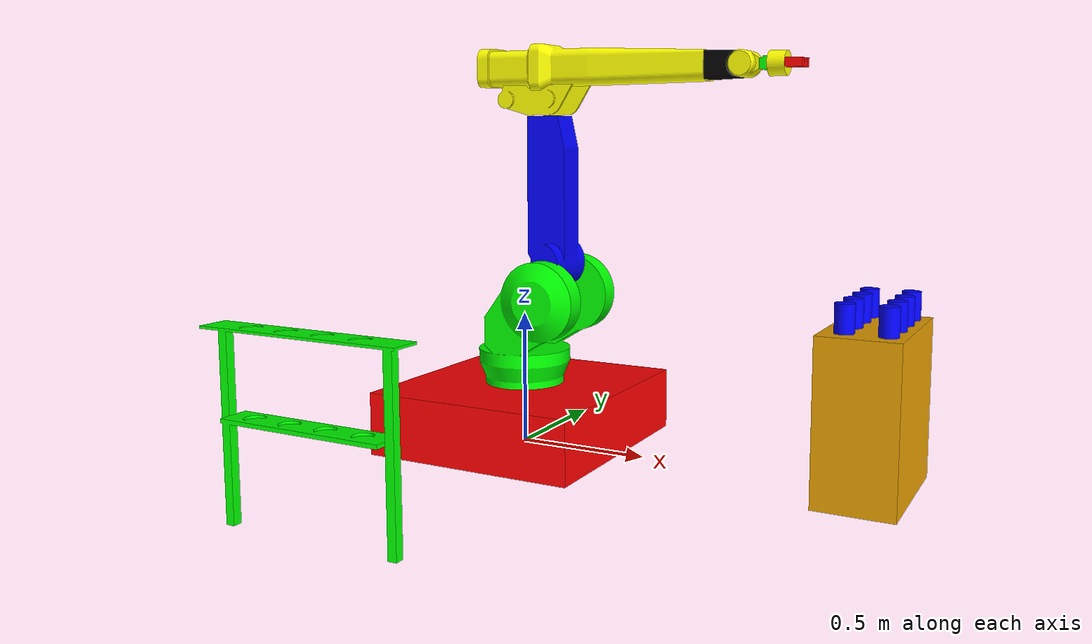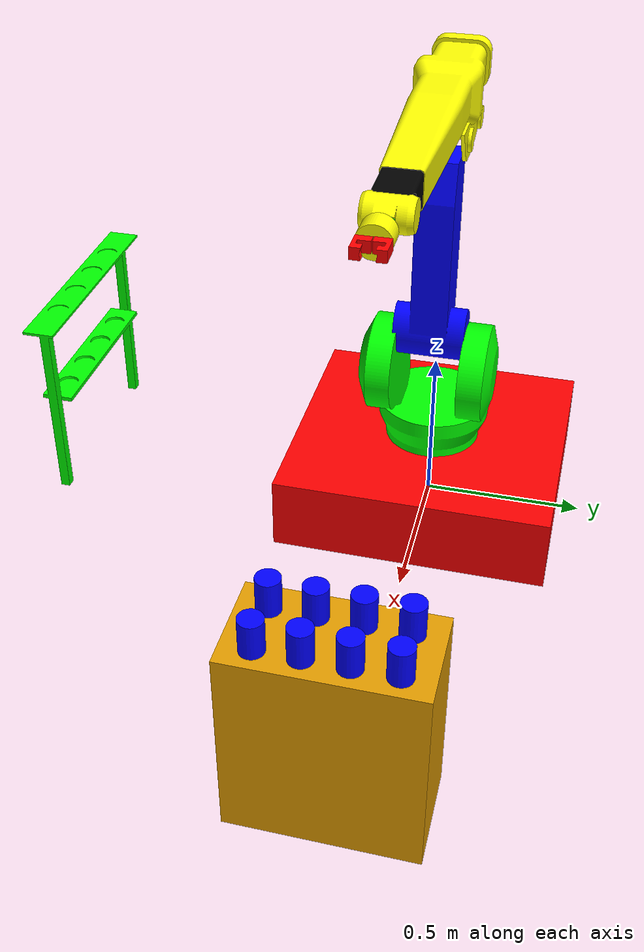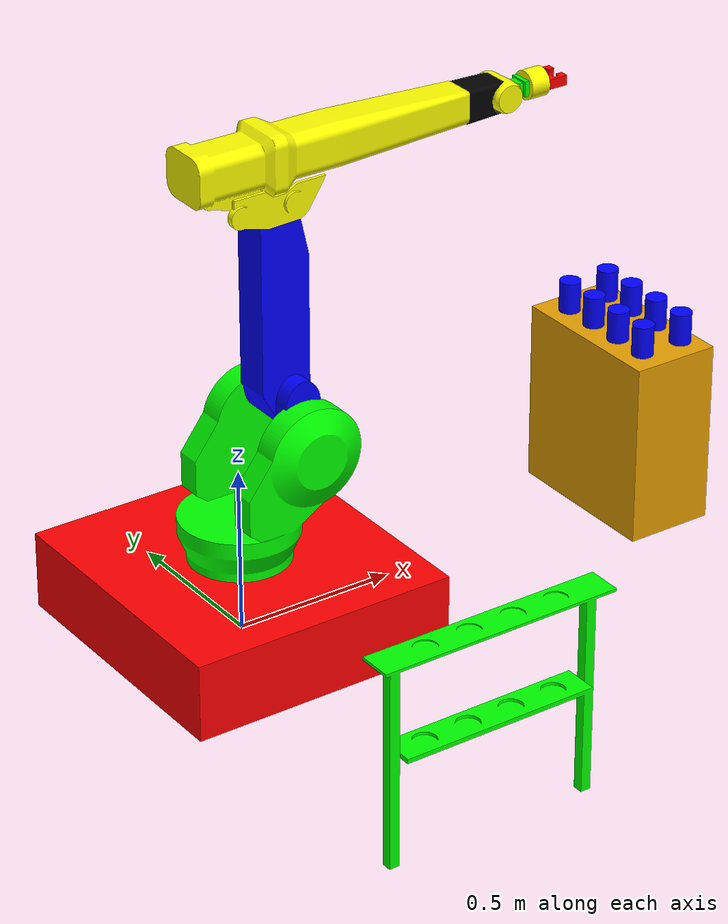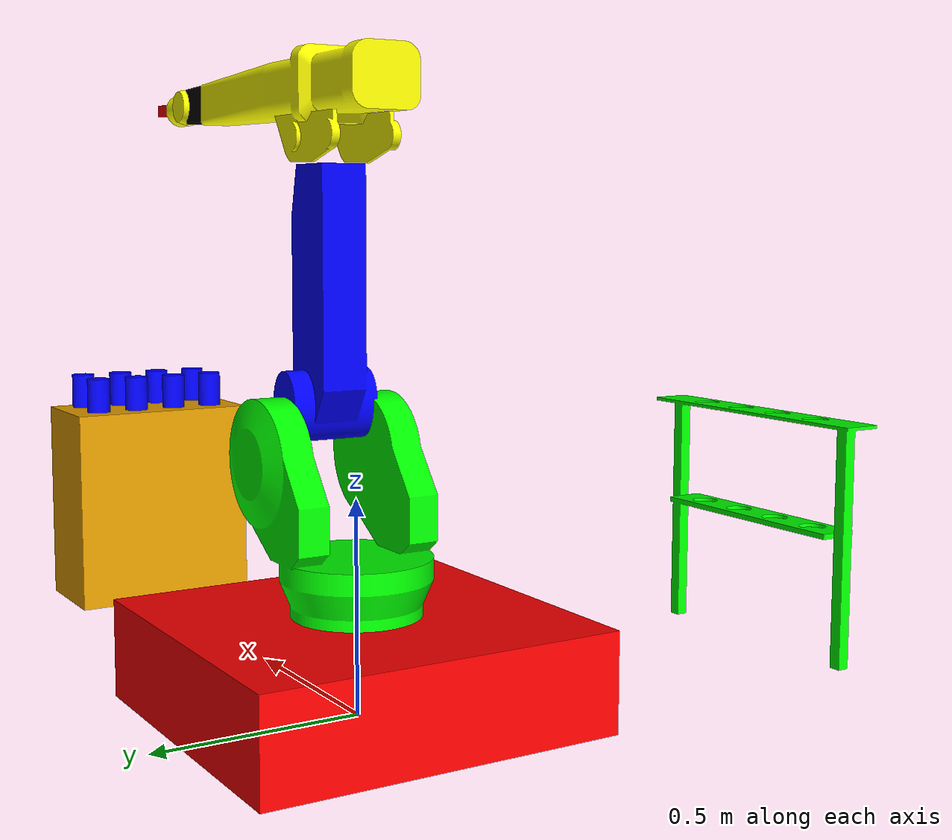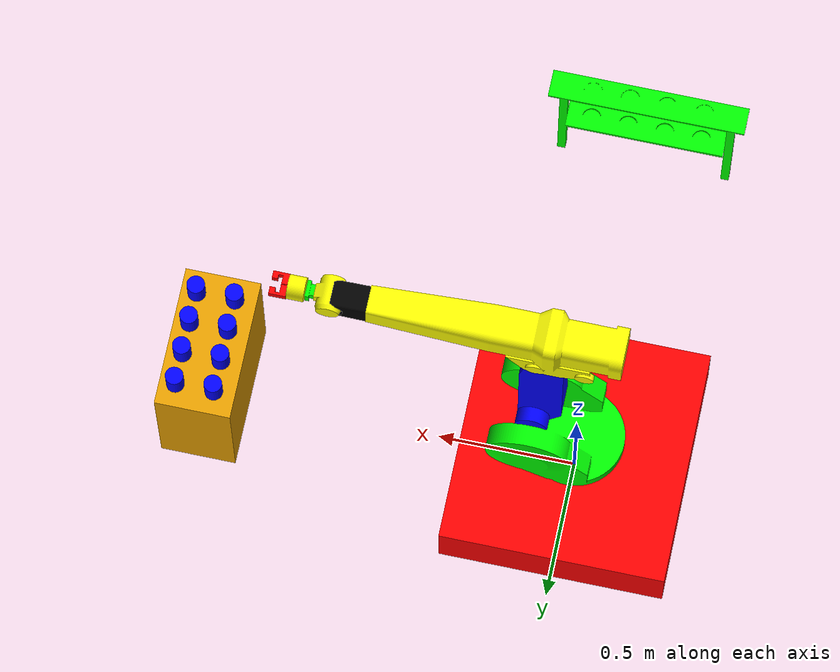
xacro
<?xml version="1.0"?>
<robot name="irb_1410_robot_ef" xmlns:xacro="http://www.ros.org/wiki/xacro">

    <material name="red"><color rgba="1 0 0 1"/></material>
    <material name="green"><color rgba="0 1 0 1"/></material>
    <material name="blue"><color rgba="0 0 1 1"/></material>
    <material name="black"><color rgba="0 0 0 1"/></material>
    <material name="yellow"><color rgba="1 1 0 1"/></material>

    <xacro:include filename="pick_drop_setup.xacro" />

    <!--  ###############  BASE LINK  ###############   -->
    <link name="base_link" />

    <!--    ROBOT BASE LINK   -->
    <link name="robot_base" >
        <visual>
            <geometry>
                <box size="0.82 0.86 0.235"/>
            </geometry>
            <origin xyz="0 0 -0.1175" rpy="0 0 0" />
            <material name="red"/>
        </visual>

        <collision>
             <visual>
            <geometry>
                <box size="0.82 0.86 0.235"/>
            </geometry>
            <origin xyz="0 0 -0.1175" rpy="0 0 0" />
            <material name="red"/>
        </visual>
        </collision>

    </link>

    <!--   ############### ROBOT BASE ROATE LINK  ###############   -->
    <link name="base" >
        <visual>
            <geometry>
                <mesh filename="package://irb_1410_new/meshes/Base.stl"
                      scale="0.001 0.001 0.001"/>
            </geometry>
            <origin xyz="0.15 0 1" rpy="0 0 1.57" />
            <material name="green"/>
        </visual>

        <collision>
            <geometry>
                <mesh filename="package://irb_1410_new/meshes/Base.stl"
                      scale="0.001 0.001 0.01"/>
            </geometry>
            <origin xyz="0.15 0 1" rpy="0 0 1.57" />
        </collision>
    </link>

     <!--   ############### ROBOT ARM LINK ###############  -->
    <link name="arm_1" >
        <visual>
            <geometry>
                <mesh filename="package://irb_1410_new/meshes/Arm_1.stl"
                      scale="0.00085 0.0007 0.001"/>
            </geometry>
            <origin xyz="0 0 0.65" rpy="0 0 1.57" />
            <material name="blue"/>
        </visual>

        <collision>
            <geometry>
                <mesh filename="package://irb_1410_new/meshes/Arm_1.stl"
                      scale="0.00085 0.0007 0.001"/>
            </geometry>
            <origin xyz="0 0 0.65" rpy="0 0 1.57" />
        </collision>
    </link>

    <!--   ############### ROBOT ARM 2 LINK ###############  -->
    <link name="arm_2" >
        <visual>
            <geometry>
                <mesh filename="package://irb_1410_new/meshes/Arm_2.stl"
                      scale="0.001 0.001 0.001"/>
            </geometry>
            <origin xyz="0 0 0.11" rpy="0 0 1.57" />
            <material name="yellow"/>
        </visual>

        <collision>
            <geometry>
                <mesh filename="package://irb_1410_new/meshes/Arm_2.stl"
                      scale="0.001 0.001 0.001"/>
            </geometry>
            <origin xyz="0 0 0.11" rpy="0 0 1.57" />
        </collision>
    </link>

    <!--   ############### ROBOT WRIST LINK ###############  -->
    <link name="wrist" >
        <visual>
            <geometry>
                <mesh filename="package://irb_1410_new/meshes/Wrist.stl"
                      scale="0.001 0.001 0.001"/>
            </geometry>
            <origin xyz="0 0.004 -0.01" rpy="0 0 1.57" />
            <material name="black"/>
        </visual>

        <collision>
            <geometry>
                <mesh filename="package://irb_1410_new/meshes/Wrist.stl"
                      scale="0.001 0.001 0.001"/>
            </geometry>
            <origin xyz="0 0.004 -0.01" rpy="0 0 1.57" />
        </collision>
    </link>

    <!--   ############### ROBOT END WRIST LINK  ############### -->
    <link name="end_wrist" >
        <visual>
            <geometry>
                <mesh filename="package://irb_1410_new/meshes/End_wrist.stl"
                      scale="0.001 0.001 0.001"/>
            </geometry>
            <origin xyz="-0.713 0 0" rpy="0 0 1.57" />
            <material name="yellow"/>
        </visual>

        <collision>
            <geometry>
                <mesh filename="package://irb_1410_new/meshes/End_wrist.stl"
                      scale="0.001 0.001 0.001"/>
            </geometry>
            <origin xyz="-0.713 0 0" rpy="0 0 1.57" />
        </collision>
    </link>

    <!--   ############### ROBOT END LINK ###############  -->
    <link name="end" >
        <visual>
            <geometry>
                <mesh filename="package://irb_1410_new/meshes/END.stl"
                      scale="0.001 0.001 0.001"/>
            </geometry>
            <origin xyz="-0.798 0 0" rpy="0 0 1.57" />
            <material name="green"/>
        </visual>

        <collision>
             <geometry>
                <mesh filename="package://irb_1410_new/meshes/END.stl"
                      scale="0.001 0.001 0.001"/>
            </geometry>
            <origin xyz="-0.798 0 0" rpy="0 0 1.57" />
        </collision>
    </link>

    <!--   ############### ROBOT END EFFECTOR CYLINDER LINK ###############  -->
    <link name="end_cylinder" >
        <visual>
            <geometry>
                <mesh filename="package://irb_1410_new/meshes/ef_cylinder.stl"
                      scale="0.001 0.001 0.001"/>
            </geometry>
            <origin xyz="0.815 0 0" rpy="1.57 1.57 0" />
            <material name="yellow"/>
        </visual>

        <collision>
            <geometry>
                <mesh filename="package://irb_1410_new/meshes/ef_cylinder.stl"
                      scale="0.001 0.001 0.001"/>
            </geometry>
            <origin xyz="0.815 0 0" rpy="1.57 1.57 0" />
        </collision>
    </link>

    <!--   ############### ROBOT END EFFECTOR FINGER_R LINK ###############  -->
    <link name="end_finger_r" >
        <visual>
            <geometry>
                <mesh filename="package://irb_1410_new/meshes/ef_finger.stl"
                      scale="0.001 0.001 0.001"/>
            </geometry>
            <origin xyz="-0.043 0 -0.885" rpy="-1.57 0 3.14" />
            <material name="red"/>
        </visual>

        <collision>
            <geometry>
                <mesh filename="package://irb_1410_new/meshes/ef_finger.stl"
                      scale="0.001 0.001 0.001"/>
            </geometry>
            <origin xyz="-0.043 0 -0.885" rpy="-1.57 0 3.14" />
        </collision>
    </link>

    <!--  ###############  GRIPPER BASE LINK  ###############   -->
    <link name="gripper_link" />

    <!--   ############### ROBOT END EFFECTOR FINGER_L LINK ###############  -->
    <link name="end_finger_l" >
        <visual>
            <geometry>
                <mesh filename="package://irb_1410_new/meshes/ef_finger.stl"
                      scale="0.001 0.001 0.001"/>
            </geometry>
            <origin xyz="0.043 0 -0.885" rpy="-1.57 0 0" />
            <material name="red"/>
        </visual>

        <collision>
            <geometry>
                <mesh filename="package://irb_1410_new/meshes/ef_finger.stl"
                      scale="0.001 0.001 0.001"/>
            </geometry>
            <origin xyz="0.043 0 -0.885" rpy="-1.57 0 0" />
        </collision>
    </link>

    <!--  ##############################  JOINTS  ##############################  -->
    <joint name="base_link_robot_base" type="fixed">
        <parent link="base_link"/>
        <child link="robot_base"/>
        <origin xyz="0 0 0.235" rpy="0 0 0"/>
    </joint>

    <joint name="joint1" type="revolute">
        <parent link="robot_base"/>
        <child link="base"/>
        <origin xyz="0 0 0.0" rpy="0 0 0"/>
        <axis xyz="0 0 1"/>
        <limit lower="-2.96706" upper="2.96706" effort="10" velocity="1"/>
    </joint>

    <joint name="joint2" type="revolute">
        <parent link="base"/>
        <child link="arm_1"/>
        <origin xyz="0.15 0.0 0.475" rpy="0 0 0"/>
        <axis xyz="0 1 0"/>
        <limit lower="-1.22173" upper="1.22173" effort="10" velocity="1"/>
    </joint>

    <joint name="joint3" type="revolute">
        <parent link="arm_1"/>
        <child link="arm_2"/>
        <origin xyz="0 0 0.600" rpy="0 0 0"/>
        <axis xyz="0 1 0"/>
        <limit lower="-1.13446" upper="1.22173" effort="10" velocity="1"/>
    </joint>

    <joint name="joint4" type="revolute">
        <parent link="arm_2"/>
        <child link="wrist"/>
        <origin xyz="0 0 0.12" rpy="0 0 0"/>
        <axis xyz="1 0 0"/>
        <limit lower="-2.53073" upper="2.53073" effort="5" velocity="0.5"/>
    </joint>

    <joint name="joint5" type="revolute">
        <parent link="wrist"/>
        <child link="end_wrist"/>
        <origin xyz="0.72 0 -0.01" rpy="0 0 0"/>
        <axis xyz="0 1 0"/>
        <limit lower="-2.00713" upper="2.00713" effort="5" velocity="0.5"/>
    </joint>

    <joint name="joint6" type="revolute">
        <parent link="end_wrist"/>
        <child link="end"/>
        <origin xyz="0.085 0.0 0.0" rpy="0 0 0"/>
        <axis xyz="1 0 0"/>
        <limit lower="-5.23599" upper="5.23599" effort="5" velocity="0.5"/>
    </joint>

    <!--  ###############  END EFFECTOR CYLINDER LINK ###############  -->

    <joint name="ef_cylinder" type="fixed">
        <parent link="end"/>
        <child link="end_cylinder"/>
        <origin xyz="0.07 0 0" rpy="0 0 0"/>
    </joint>

    <!--  ###############  END EFFECTOR GRIPPER LINK ###############  -->

    <joint name="tool" type="fixed">
        <parent link="end_cylinder"/>
        <child link="gripper_link"/>
        <origin xyz="0.0 0 0" rpy="1.57 0 1.57"/>
    </joint>

    <!--  ###############  END EFFECTOR RIGHT FINGER LINK ###############  -->

    <joint name="ef_finger_r" type="prismatic">
        <parent link="end_cylinder"/>
        <child link="end_finger_r"/>
        <origin xyz="0.00 0.02 0" rpy="1.57 0 1.57"/>
        <axis xyz="1 0 0"/>
        <!-- Limits: lower/upper (meters), effort (N), velocity (m/s) -->
        <limit effort="100.0" lower="0.0" upper="0.02" velocity="0.02"/>
    </joint>

    <!--  ###############  END EFFECTOR RIGHT FINGER LINK ###############  -->
    <joint name="ef_finger_l" type="prismatic">
        <parent link="end_cylinder"/>
        <child link="end_finger_l"/>
        <origin xyz="0.0 -0.02 0" rpy="1.57 0 1.57"/>
        <axis xyz="-1 0 0"/>
        <!-- Limits: lower/upper (meters), effort (N), velocity (m/s) -->
        <limit effort="100.0" lower="0.0" upper="0.02" velocity="0.02"/>
    </joint>

</robot>

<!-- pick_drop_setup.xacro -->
<robot xmlns:xacro="http://www.ros.org/wiki/xacro">

    <!--  ###############  ROBOT PICKUP STAND LINK ###############   -->
    <link name="pickup_stand">
        <visual>
            <geometry>
                <box size="0.51 0.274 0.5635" />
            </geometry>
            <origin xyz="0.137 0.25 -0.28175" rpy="0 0 1.57" />
        </visual>

        <collision>
           <geometry>
                <box size="0.51 0.274 0.5635" />
            </geometry>
            <origin xyz="0 0 0" rpy="0 0 1.57" />
        </collision>
    </link>

    <!--  ###############  ROBOT PICKUP STAND LINK ###############  -->
    <link name="drop_stand" >
        <visual>
            <geometry>
                <mesh filename="package://irb_1410/meshes/Part1.SLDPRT"
                      scale="0.001 0.001 0.001"/>
            </geometry>
            <origin xyz="0.9 -0.32 0.35" rpy="0 1.57 1.57" />
            <material name="green"/>
        </visual>

        <collision>
            <geometry>
                <mesh filename="package://irb_1410/meshes/stand_1.stl"
                      scale="0.001 0.001 0.001"/>
            </geometry>
            <origin xyz="0.9 -0.32 0.35" rpy="0 1.57 1.57" />
        </collision>
    </link>

    <!-- ###############   CYLINDRICAL BLOCK  MACROS  ############### -->
    <xacro:macro name="cylindrical_block" params="prefix">
        <link name="cylindrical_block_${prefix}" >
        <visual>
            <geometry>
                <cylinder radius="0.0325" length="0.0975"/>
            </geometry>
            <origin xyz="0 0 0" rpy="0 0 0" />
            <material name="blue"/>
        </visual>

        <collision>
            <geometry>
                <cylinder radius="0.0325" length="0.0975"/>
            </geometry>
            <origin xyz="0 0 0" rpy="0 0 0" />
        </collision>

    </link>
    </xacro:macro>

    <!-- ###############   CALLING FRONT CYLINDRICAL BLOCK  MACROS  ############### -->
    <xacro:cylindrical_block prefix="11" />
    <xacro:cylindrical_block prefix="12" />
    <xacro:cylindrical_block prefix="13" />
    <xacro:cylindrical_block prefix="14" />

    <xacro:cylindrical_block prefix="21" />
    <xacro:cylindrical_block prefix="22" />
    <xacro:cylindrical_block prefix="23" />
    <xacro:cylindrical_block prefix="24" />

    <!--  ###############  STAND JOINT ###############  -->
    <joint name="pickup_stand_joint" type="fixed">
        <parent link="base_link"/>
        <child link="pickup_stand"/>
        <origin xyz="1.2 -0.255 0.5635" rpy="0 0 0"/>
    </joint>

    <!--  ###############  DROP STAND JOINT ###############  -->
    <joint name="drop_stand_joint" type="fixed">
        <parent link="base_link"/>
        <child link="drop_stand"/>
        <origin xyz="0 -1.2 0" rpy="0 0 0"/>
    </joint>

    <!--  ###############  FRONT CYLINDRICAL BLOCK JOINT 11 ###############  -->
    <joint name="cylindrial_block_joint_11" type="fixed">
        <parent link="pickup_stand"/>
        <child link="cylindrical_block_11"/>
        <origin xyz="0.07624 0.07665 0.049" rpy="0 0 0"/>
    </joint>

    <!--  ###############  FRONT CYLINDRICAL BLOCK JOINT 12 ###############  -->
    <joint name="cylindrial_block_joint_12" type="fixed">
        <parent link="pickup_stand"/>
        <child link="cylindrical_block_12"/>
        <origin xyz="0.07624 0.19165 0.049" rpy="0 0 0"/>
    </joint>

    <!--  ###############  FRONT CYLINDRICAL BLOCK JOINT 13 ###############  -->
    <joint name="cylindrial_block_joint_13" type="fixed">
        <parent link="pickup_stand"/>
        <child link="cylindrical_block_13"/>
        <origin xyz="0.07624 0.30665 0.049" rpy="0 0 0"/>
    </joint>

    <!--  ###############  FRONT CYLINDRICAL BLOCK JOINT 14 ###############  -->
    <joint name="cylindrial_block_joint_14" type="fixed">
        <parent link="pickup_stand"/>
        <child link="cylindrical_block_14"/>
        <origin xyz="0.07624 0.42165 0.049" rpy="0 0 0"/>
    </joint>

    <!--  ###############  FRONT CYLINDRICAL BLOCK JOINT 21 ###############  -->
    <joint name="cylindrial_block_joint_21" type="fixed">
        <parent link="pickup_stand"/>
        <child link="cylindrical_block_21"/>
        <origin xyz="0.21536 0.07665 0.049" rpy="0 0 0"/>
    </joint>

    <!--  ###############  FRONT CYLINDRICAL BLOCK JOINT 22 ###############  -->
    <joint name="cylindrial_block_joint_22" type="fixed">
        <parent link="pickup_stand"/>
        <child link="cylindrical_block_22"/>
        <origin xyz="0.21536 0.19165 0.049" rpy="0 0 0"/>
    </joint>

    <!--  ###############  FRONT CYLINDRICAL BLOCK JOINT 23 ###############  -->
    <joint name="cylindrial_block_joint_23" type="fixed">
        <parent link="pickup_stand"/>
        <child link="cylindrical_block_23"/>
        <origin xyz="0.21536 0.30665 0.049" rpy="0 0 0"/>
    </joint>

    <!--  ###############  FRONT CYLINDRICAL BLOCK JOINT 24 ###############  -->
    <joint name="cylindrial_block_joint_24" type="fixed">
        <parent link="pickup_stand"/>
        <child link="cylindrical_block_24"/>
        <origin xyz="0.21536 0.42165 0.049" rpy="0 0 0"/>
    </joint>

</robot>
